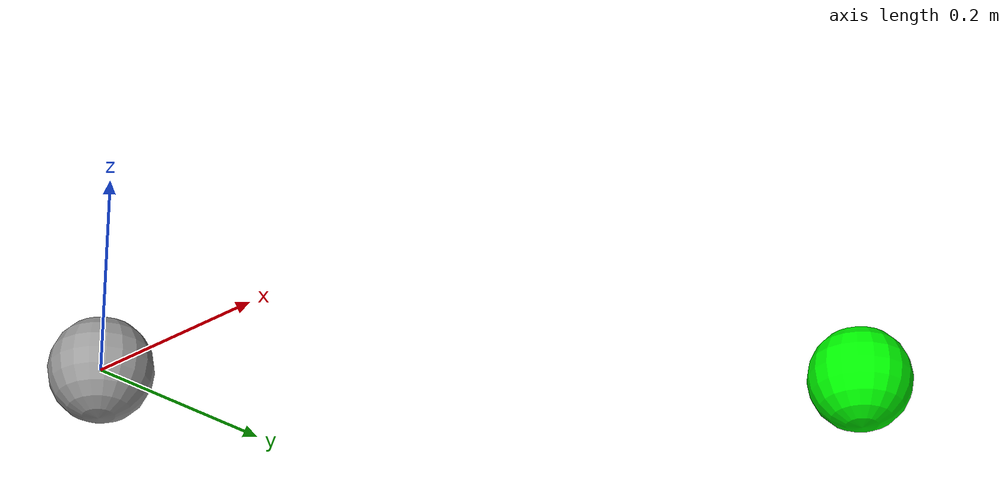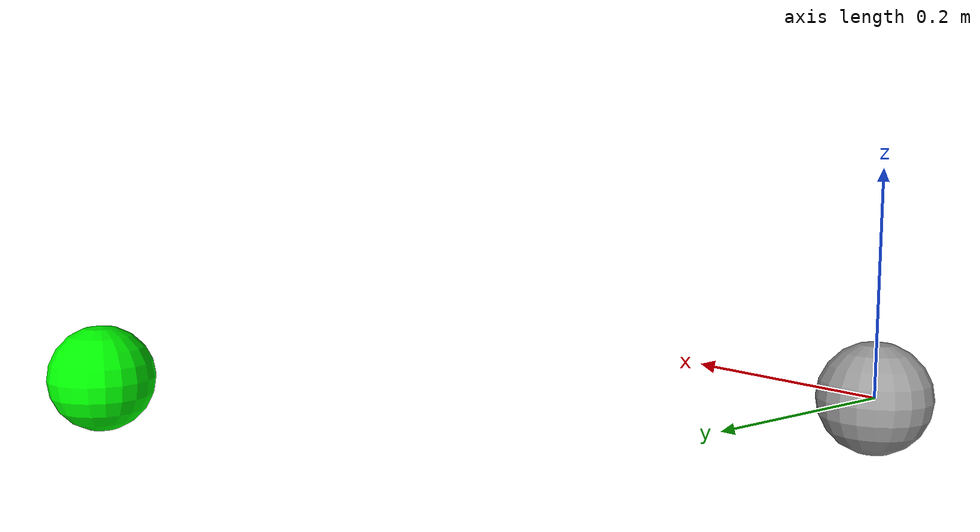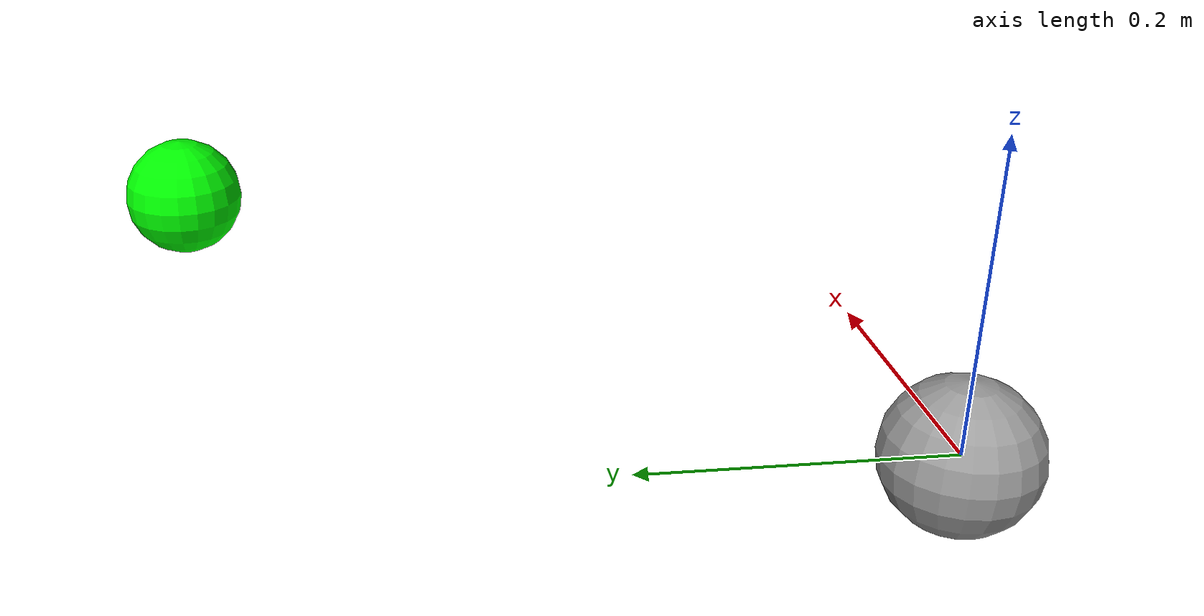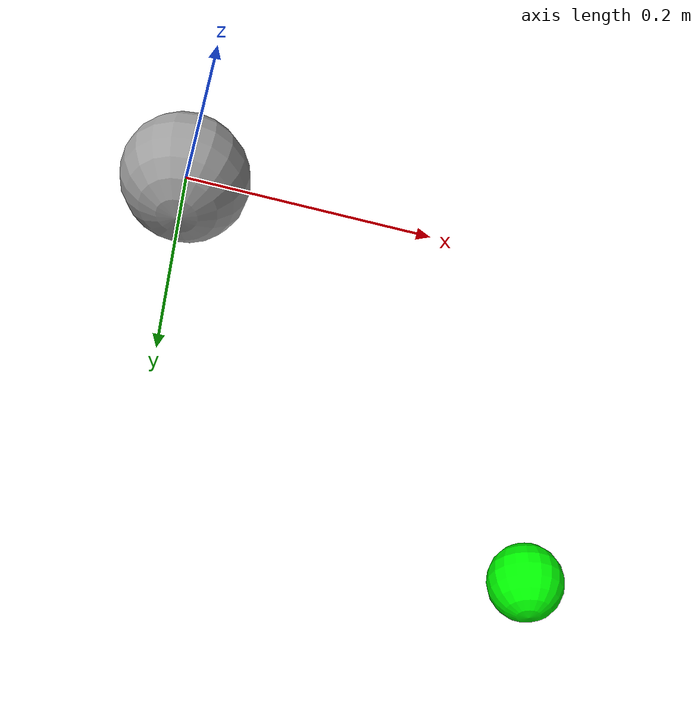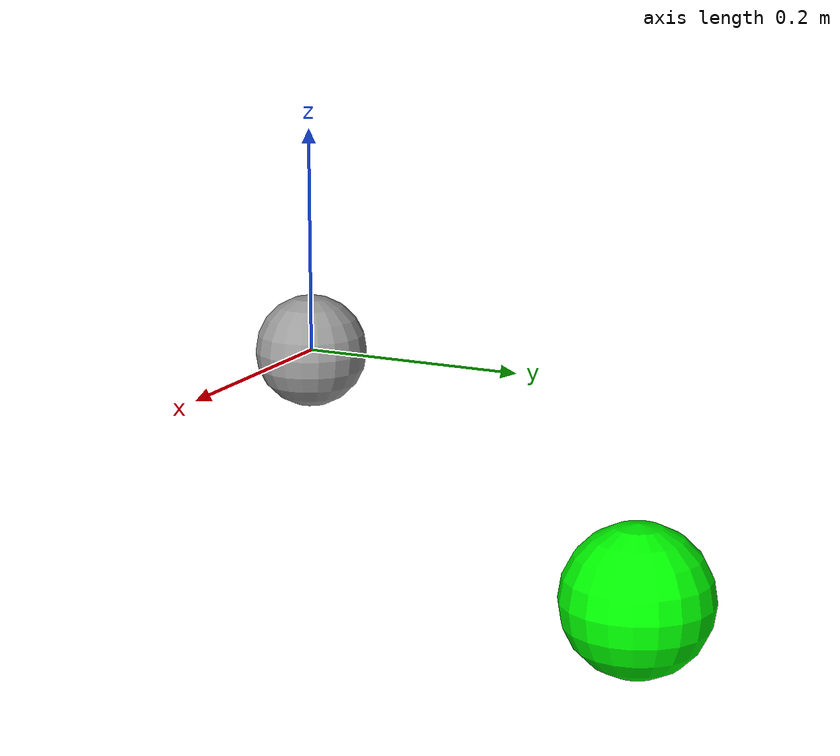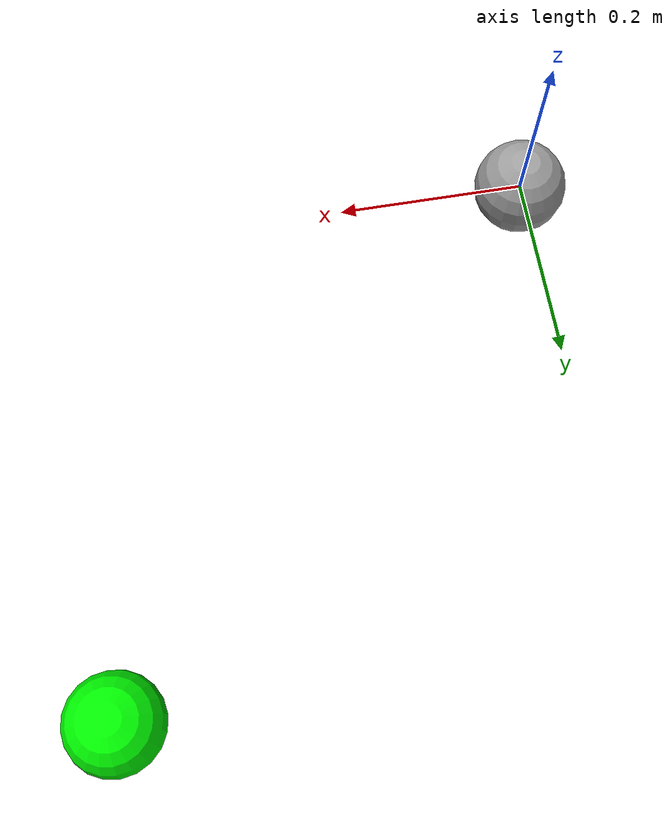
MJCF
<mujoco model="pointmass">
   <compiler inertiafromgeom="true" angle="radian" coordinate="local" />
   <option timestep="0.01" gravity="0 0 0" iterations="100" integrator="Euler" />
   <default>
      <joint armature="0.004" damping="0.8" limited="true" />
      <geom friction=".5 .1 .1" margin="0.002" condim="1" contype="0" conaffinity="0" rgba="1.0 0.25 0.22 1" />
   </default>

   <worldbody>
		<light diffuse=".5 .5 .5" pos="0 0 3" dir="0 0 -1"/>

      <!-- cameras -->
      <camera name="ebm_custom" pos="0 0 2" quat='1 0 0 0' fovy='60'/>

		<body name="robot" pos="0 0 0">
			<geom name="robot_geom"  type="sphere" rgba="0.6 0.6 0.6 1" pos="0 0 0" size="0.05" />
			<joint name="robot_joint_x" type="slide" pos="0 0 0" axis="1 0 0" range="-1 1" />
			<joint name="robot_joint_y" type="slide" pos="0 0 0" axis="0 1 0" range="-1 1" />
		</body>

		<site name="target" type="sphere" rgba="0 1 0 1" pos="0.5 0.5 0" size="0.05" />
    </worldbody>

   <actuator>

      <velocity name="actuator_x" joint="robot_joint_x" ctrlrange="-1   1" kv="10"/>
      <velocity name="actuator_y" joint="robot_joint_y" ctrlrange="-1   1" kv="10"/>

   </actuator>
</mujoco>
